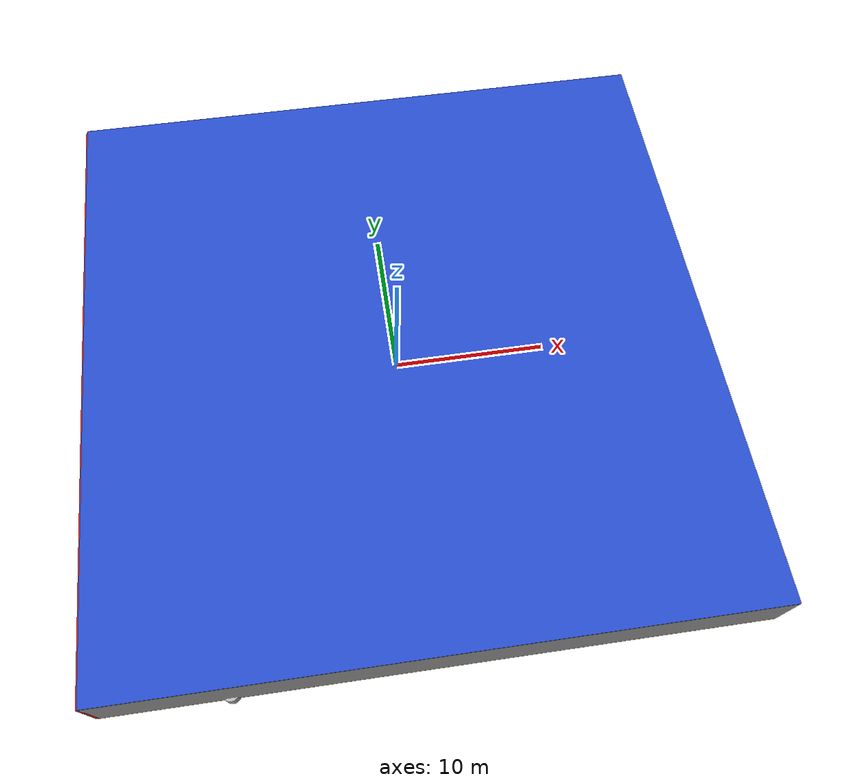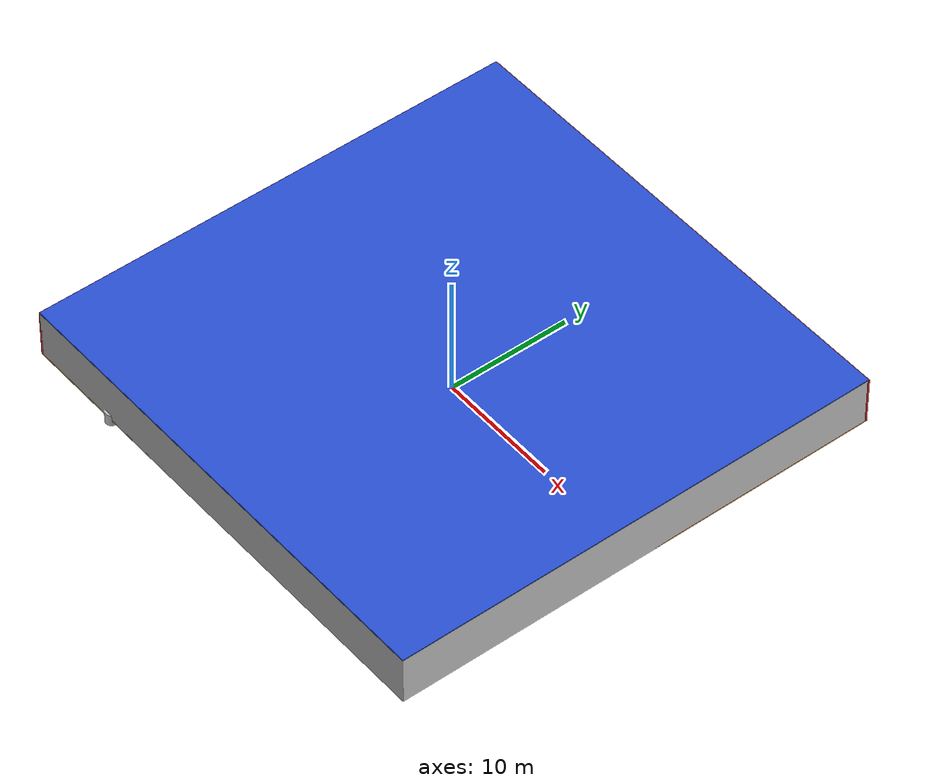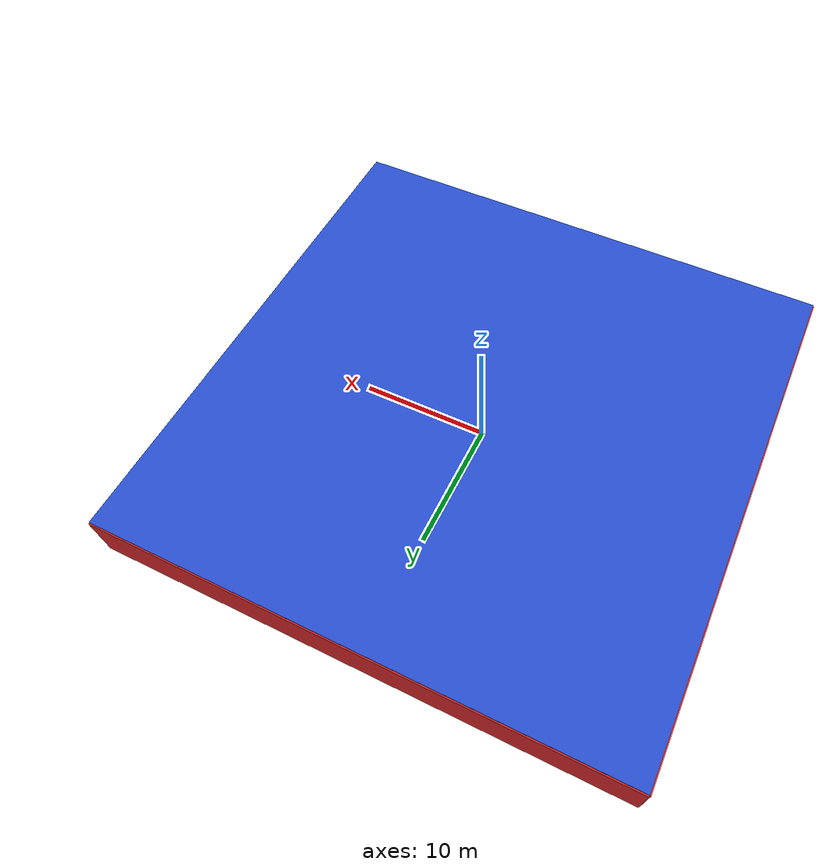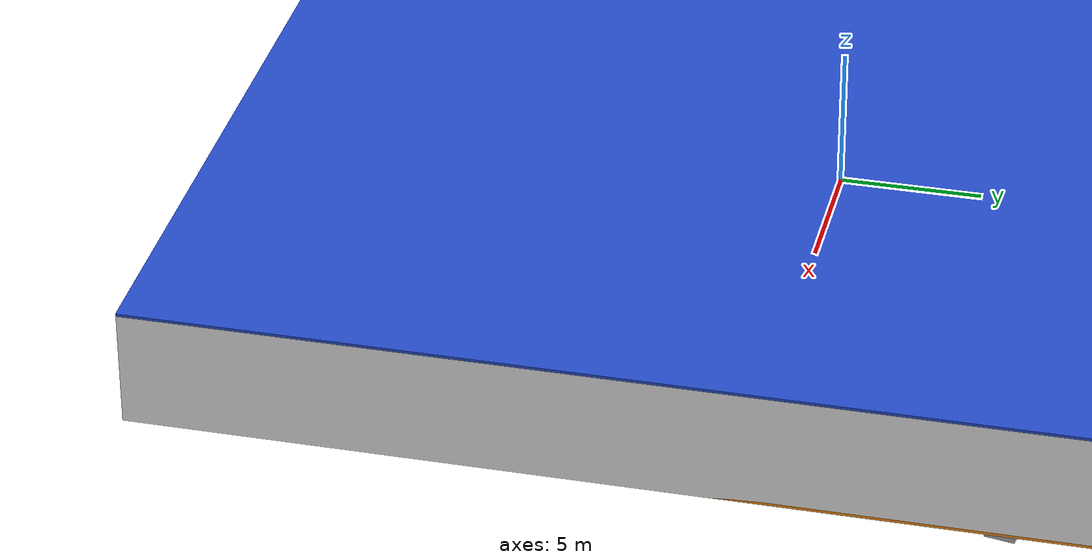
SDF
<sdf version="1.4">
 <world name="default">
  <physics type="ode">
   <max_step_size>0.001</max_step_size>
   <real_time_factor>1</real_time_factor>
   <real_time_update_rate>1000</real_time_update_rate>
   <gravity>0 0 -9.8</gravity>
  </physics>
  <scene><ambient>0.4 0.4 0.4 1</ambient><background>0.7 0.7 0.7 1</background><shadows>1</shadows></scene>
  <model name="Surrounding">
   <static>1</static>
   <link name="Ceiling">
    <collision name="Ceiling_Collision"><geometry><box><size>40 40 0.1</size></box></geometry></collision>
    <visual name="Ceiling_Visual">
     <geometry><box><size>40 40 0.1</size></box></geometry>
     <material>
      <script><uri>file://media/materials/scripts/gazebo.material</uri><name>Gazebo/BlueGlow</name></script>
     </material>
    </visual>
    <pose>0 0 4.05 0 0 0</pose>
   </link>
   <link name="Wall_South">
    <collision name="Wall_South_Collision">
     <geometry><box><size>40 0 4</size></box></geometry>
     <pose>0 0 2 0 -0 0</pose>
    </collision>
    <visual name="Wall_South_Visual">
     <pose>0 0 2 0 -0 0</pose>
     <geometry><box><size>40 0 4</size></box></geometry>
     <material>
      <script><uri>file://media/materials/scripts/gazebo.material</uri><name>Gazebo/Grey</name></script>
     </material>
    </visual>
    <velocity_decay><linear>0</linear><angular>0</angular></velocity_decay>
    <pose>0 -20 0 0 -0 0</pose>
   </link>
   <link name="Wall_East">
    <collision name="Wall_21_Collision">
     <geometry><box><size>40 0 4</size></box></geometry>
     <pose>0 0 2 0 -0 0</pose>
    </collision>
    <visual name="Wall_21_Visual">
     <pose>0 0 2 0 -0 0</pose>
     <geometry><box><size>40 0 4</size></box></geometry>
     <material>
      <script><uri>file://media/materials/scripts/gazebo.material</uri><name>Gazebo/White</name></script>
     </material>
    </visual>
    <velocity_decay><linear>0</linear><angular>0</angular></velocity_decay>
    <pose>20 0 0 0 -0 1.5708</pose>
   </link>
   <link name="Wall_North">
    <collision name="Wall_22_Collision">
     <geometry><box><size>40 0.2 4</size></box></geometry>
     <pose>0 0 2 0 -0 0</pose>
    </collision>
    <visual name="Wall_22_Visual">
     <pose>0 0 2 0 -0 0</pose>
     <geometry><box><size>40 0.2 4</size></box></geometry>
     <material>
      <script><uri>file://media/materials/scripts/gazebo.material</uri><name>Gazebo/RedGlow</name></script>
     </material>
    </visual>
    <velocity_decay><linear>0</linear><angular>0</angular></velocity_decay>
    <pose>0 20 0 0 -0 0</pose>
   </link>
   <link name="Wall_West">
    <collision name="Wall_23_Collision">
     <geometry><box><size>40 0.2 4</size></box></geometry>
     <pose>0 0 2 0 -0 0</pose>
    </collision>
    <visual name="Wall_23_Visual">
     <pose>0 0 2 0 -0 0</pose>
     <geometry><box><size>40 0.2 4</size></box></geometry>
     <material>
      <script><uri>file://media/materials/scripts/gazebo.material</uri><name>Gazebo/Red</name></script>
     </material>
    </visual>
    <velocity_decay><linear>0</linear><angular>0</angular></velocity_decay>
    <pose>-20 0 0 0 0 -1.5708</pose>
   </link>
   <link name="Ground_link">
    <collision name="collision">
     <pose>0 0 .05 0 -0 0</pose>
     <geometry><box><size>40 40 0.1</size></box></geometry>
    </collision>
    <visual name="visual">
     <pose>0 0 .05 0 -0 0</pose>
     <geometry><box><size>40 40 0.1</size></box></geometry>
     <material>
      <script><uri>file://media/materials/scripts/gazebo.material</uri><name>Gazebo/Orange</name></script>
     </material>
    </visual>
   </link>
   <static>1</static>
  </model>
  <spherical_coordinates>
   <surface_model>EARTH_WGS84</surface_model>
   <latitude_deg>0</latitude_deg>
   <longitude_deg>0</longitude_deg>
   <elevation>0</elevation>
   <heading_deg>0</heading_deg>
  </spherical_coordinates>
  <light name="lightball_0" type="diffuse">
   <diffuse>0.8 0.8 0.8 1</diffuse>
   <specular>0.2 0.2 0.2 1</specular>
   <attenuation>
    <range>100</range>
    <constant>0.7</constant>
    <linear>0.01</linear>
    <quadratic>0.001</quadratic>
   </attenuation>
   <direction>-0.5 0.1 -0.9</direction>
   <pose>-8.46878161522 -18.822625193 3.58309246713 0 0 0</pose>
  </light>
  <light name="lightball_1" type="diffuse">
   <diffuse>0.8 0.8 0.8 1</diffuse>
   <specular>0.2 0.2 0.2 1</specular>
   <attenuation>
    <range>100</range>
    <constant>0.7</constant>
    <linear>0.01</linear>
    <quadratic>0.001</quadratic>
   </attenuation>
   <direction>-0.5 0.1 -0.9</direction>
   <pose>-7.41520383944 0.0540294621728 0.947902784791 0 0 0</pose>
  </light>
  <light name="lightball_2" type="diffuse">
   <diffuse>0.8 0.8 0.8 1</diffuse>
   <specular>0.2 0.2 0.2 1</specular>
   <attenuation>
    <range>100</range>
    <constant>0.7</constant>
    <linear>0.01</linear>
    <quadratic>0.001</quadratic>
   </attenuation>
   <direction>-0.5 0.1 -0.9</direction>
   <pose>10.3040403034 -0.342239010584 2.86432506064 0 0 0</pose>
  </light>
  <light name="lightball_3" type="diffuse">
   <diffuse>0.8 0.8 0.8 1</diffuse>
   <specular>0.2 0.2 0.2 1</specular>
   <attenuation>
    <range>100</range>
    <constant>0.7</constant>
    <linear>0.01</linear>
    <quadratic>0.001</quadratic>
   </attenuation>
   <direction>-0.5 0.1 -0.9</direction>
   <pose>-6.33003200798 -17.0636969686 1.57039392374 0 0 0</pose>
  </light>
  <light name="lightball_4" type="diffuse">
   <diffuse>0.8 0.8 0.8 1</diffuse>
   <specular>0.2 0.2 0.2 1</specular>
   <attenuation>
    <range>100</range>
    <constant>0.7</constant>
    <linear>0.01</linear>
    <quadratic>0.001</quadratic>
   </attenuation>
   <direction>-0.5 0.1 -0.9</direction>
   <pose>-13.2780355296 -7.66080798674 3.88198136258 0 0 0</pose>
  </light>
  <light name="lightball_5" type="diffuse">
   <diffuse>0.8 0.8 0.8 1</diffuse>
   <specular>0.2 0.2 0.2 1</specular>
   <attenuation>
    <range>100</range>
    <constant>0.7</constant>
    <linear>0.01</linear>
    <quadratic>0.001</quadratic>
   </attenuation>
   <direction>-0.5 0.1 -0.9</direction>
   <pose>5.31298023061 3.13522265476 1.29009662507 0 0 0</pose>
  </light>
  <light name="lightball_6" type="diffuse">
   <diffuse>0.8 0.8 0.8 1</diffuse>
   <specular>0.2 0.2 0.2 1</specular>
   <attenuation>
    <range>100</range>
    <constant>0.7</constant>
    <linear>0.01</linear>
    <quadratic>0.001</quadratic>
   </attenuation>
   <direction>-0.5 0.1 -0.9</direction>
   <pose>-7.41172964962 -1.49866447869 1.45464153144 0 0 0</pose>
  </light>
  <light name="lightball_7" type="diffuse">
   <diffuse>0.8 0.8 0.8 1</diffuse>
   <specular>0.2 0.2 0.2 1</specular>
   <attenuation>
    <range>100</range>
    <constant>0.7</constant>
    <linear>0.01</linear>
    <quadratic>0.001</quadratic>
   </attenuation>
   <direction>-0.5 0.1 -0.9</direction>
   <pose>-18.9452281707 -16.2332494605 3.02263436317 0 0 0</pose>
  </light>
  <light name="lightball_8" type="diffuse">
   <diffuse>0.8 0.8 0.8 1</diffuse>
   <specular>0.2 0.2 0.2 1</specular>
   <attenuation>
    <range>100</range>
    <constant>0.7</constant>
    <linear>0.01</linear>
    <quadratic>0.001</quadratic>
   </attenuation>
   <direction>-0.5 0.1 -0.9</direction>
   <pose>-10.6258585838 16.5694298189 1.94904183325 0 0 0</pose>
  </light>
  <light name="lightball_9" type="diffuse">
   <diffuse>0.8 0.8 0.8 1</diffuse>
   <specular>0.2 0.2 0.2 1</specular>
   <attenuation>
    <range>100</range>
    <constant>0.7</constant>
    <linear>0.01</linear>
    <quadratic>0.001</quadratic>
   </attenuation>
   <direction>-0.5 0.1 -0.9</direction>
   <pose>-12.3719702221 18.0638909159 1.25057015084 0 0 0</pose>
  </light>
  <light name="lightball_10" type="diffuse">
   <diffuse>0.8 0.8 0.8 1</diffuse>
   <specular>0.2 0.2 0.2 1</specular>
   <attenuation>
    <range>100</range>
    <constant>0.7</constant>
    <linear>0.01</linear>
    <quadratic>0.001</quadratic>
   </attenuation>
   <direction>-0.5 0.1 -0.9</direction>
   <pose>-15.7870420965 -15.1231212573 1.64082867579 0 0 0</pose>
  </light>
  <light name="lightball_11" type="diffuse">
   <diffuse>0.8 0.8 0.8 1</diffuse>
   <specular>0.2 0.2 0.2 1</specular>
   <attenuation>
    <range>100</range>
    <constant>0.7</constant>
    <linear>0.01</linear>
    <quadratic>0.001</quadratic>
   </attenuation>
   <direction>-0.5 0.1 -0.9</direction>
   <pose>5.49340433396 15.4641139359 1.23337713244 0 0 0</pose>
  </light>
  <include><uri>model://table</uri><pose>-18.150948924 -10.7373507973 0 0 0 2.61711961236</pose></include>
  <include><uri>model://cabinet</uri><pose>-14.1636431434 -10.8768369124 0 0 0 1.22925899789</pose></include>
  <include>
   <uri>model://textured_shapes</uri>
   <pose>-13.4069001908 -7.57036999363 0 0 0 2.10191504115</pose>
  </include>
  <include><uri>model://cabinet</uri><pose>-13.9584201786 6.30188710051 0 0 0 2.94017130315</pose></include>
  <include>
   <uri>model://textured_shapes</uri>
   <pose>-11.8411294018 -18.3076491043 0 0 0 2.77237799779</pose>
  </include>
  <include><uri>model://table</uri><pose>-10.8526558077 -6.59250404254 0 0 0 1.14215108408</pose></include>
  <include>
   <uri>model://construction_cone</uri>
   <pose>-10.5197582604 6.02917978517 0 0 0 0.588818378041</pose>
  </include>
  <include><uri>model://cabinet</uri><pose>-10.7910952394 10.1576410585 0 0 0 1.65078282825</pose></include>
  <include><uri>model://cabinet</uri><pose>-10.9171940818 19.1417398297 0 0 0 2.20184323574</pose></include>
  <include><uri>model://table</uri><pose>-8.53636949207 5.35278953804 0 0 0 1.7234399511</pose></include>
  <include>
   <uri>model://robocup_3Dsim_goal</uri>
   <pose>-8.02858198557 8.31216575611 0 0 0 1.41862599705</pose>
  </include>
  <include>
   <uri>model://construction_cone</uri>
   <pose>-6.58759718239 -12.2642182053 0 0 0 2.46326806255</pose>
  </include>
  <include><uri>model://cabinet</uri><pose>-1.57584279169 -6.07313695896 0 0 0 3.11676827762</pose></include>
  <include>
   <uri>model://textured_shapes</uri>
   <pose>1.33853142947 3.60764600056 0 0 0 0.399703707819</pose>
  </include>
  <include>
   <uri>model://textured_shapes</uri>
   <pose>4.5752212129 11.7365867023 0 0 0 0.818932562538</pose>
  </include>
  <include><uri>model://cabinet</uri><pose>5.41988321721 -8.92717015093 0 0 0 1.04344715831</pose></include>
  <include>
   <uri>model://robocup_3Dsim_goal</uri>
   <pose>13.1861908574 -12.4764029191 0 0 0 2.02835463003</pose>
  </include>
  <include><uri>model://cabinet</uri><pose>13.6056930422 -2.24762279903 0 0 0 0.727920104392</pose></include>
  <include>
   <uri>model://robocup_3Dsim_goal</uri>
   <pose>12.6226643726 1.58769738991 0 0 0 1.43566317794</pose>
  </include>
  <include><uri>model://cabinet</uri><pose>11.7145928593 3.35777553266 0 0 0 1.62013610594</pose></include>
  <include>
   <uri>model://robocup_3Dsim_goal</uri>
   <pose>15.1033549466 -18.1118474832 0 0 0 1.89553165574</pose>
  </include>
  <include><uri>model://table</uri><pose>16.2096276684 3.72705190269 0 0 0 0.419537917304</pose></include>
  <include>
   <uri>model://construction_cone</uri>
   <pose>15.0971929041 18.4895699872 0 0 0 2.51378993244</pose>
  </include>
  <include>
   <uri>model://construction_cone</uri>
   <pose>17.7142174843 -7.54091286395 0 0 0 0.302024386606</pose>
  </include>
  <include>
   <uri>model://textured_shapes</uri>
   <pose>18.7361764625 7.12131934233 0 0 0 2.96496137312</pose>
  </include>
 </world>
</sdf>

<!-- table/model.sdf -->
<sdf version="1.5">
  <model name="table">
    <static>true</static>
    <link name="link">
      <collision name="surface">
        <pose>0 0 1.0 0 0 0</pose>
        <geometry>
          <box>
            <size>1.5 0.8 0.03</size>
          </box>
        </geometry>
        <surface>
          <friction>
            <ode>
              <mu>0.6</mu>
              <mu2>0.6</mu2>
            </ode>
          </friction>
        </surface>
      </collision>
      <visual name="visual1">
        <pose>0 0 1.0 0 0 0</pose>
        <geometry>
          <box>
            <size>1.5 0.8 0.03</size>
          </box>
        </geometry>
        <material>
          <script>
            <uri>model://media/materials/scripts/gazebo.material</uri>
            <name>Gazebo/Wood</name>
          </script>
        </material>
      </visual>
      <collision name="front_left_leg">
        <pose>0.68 0.38 0.5 0 0 0</pose>
        <geometry>
          <cylinder>
            <radius>0.02</radius>
            <length>1.0</length>
          </cylinder>
        </geometry>
      </collision>
      <visual name="front_left_leg">
        <pose>0.68 0.38 0.5 0 0 0</pose>
        <geometry>
          <cylinder>
            <radius>0.02</radius>
            <length>1.0</length>
          </cylinder>
        </geometry>
        <material>
          <script>
            <uri>model://media/materials/scripts/gazebo.material</uri>
            <name>Gazebo/Grey</name>
          </script>
        </material>
      </visual>
      <collision name="front_right_leg">
        <pose>0.68 -0.38 0.5 0 0 0</pose>
        <geometry>
          <cylinder>
            <radius>0.02</radius>
            <length>1.0</length>
          </cylinder>
        </geometry>
      </collision>
      <visual name="front_right_leg">
        <pose>0.68 -0.38 0.5 0 0 0</pose>
        <geometry>
          <cylinder>
            <radius>0.02</radius>
            <length>1.0</length>
          </cylinder>
        </geometry>
        <material>
          <script>
            <uri>model://media/materials/scripts/gazebo.material</uri>
            <name>Gazebo/Grey</name>
          </script>
        </material>
      </visual>
      <collision name="back_right_leg">
        <pose>-0.68 -0.38 0.5 0 0 0</pose>
        <geometry>
          <cylinder>
            <radius>0.02</radius>
            <length>1.0</length>
          </cylinder>
        </geometry>
      </collision>
      <visual name="back_right_leg">
        <pose>-0.68 -0.38 0.5 0 0 0</pose>
        <geometry>
          <cylinder>
            <radius>0.02</radius>
            <length>1.0</length>
          </cylinder>
        </geometry>
        <material>
          <script>
            <uri>model://media/materials/scripts/gazebo.material</uri>
            <name>Gazebo/Grey</name>
          </script>
        </material>
      </visual>
      <collision name="back_left_leg">
        <pose>-0.68 0.38 0.5 0 0 0</pose>
        <geometry>
          <cylinder>
            <radius>0.02</radius>
            <length>1.0</length>
          </cylinder>
        </geometry>
      </collision>
      <visual name="back_left_leg">
        <pose>-0.68 0.38 0.5 0 0 0</pose>
        <geometry>
          <cylinder>
            <radius>0.02</radius>
            <length>1.0</length>
          </cylinder>
        </geometry>
        <material>
          <script>
            <uri>model://media/materials/scripts/gazebo.material</uri>
            <name>Gazebo/Grey</name>
          </script>
        </material>
      </visual>
    </link>
  </model>
</sdf>

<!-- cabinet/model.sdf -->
<sdf version="1.5">
  <model name="cabinet">
    <static>true</static>
    <link name="cabinet_bottom_plate">
      <inertial>
        <pose>0 0 -1 0 0 0</pose>
        <inertia>
          <ixx>2.050000</ixx>
          <ixy>0</ixy>
          <ixz>0</ixz>
          <iyy>2.050000</iyy>
          <iyz>0</iyz>
          <izz>2.050000</izz>
        </inertia>
        <mass>25.000000</mass>
      </inertial>
      <collision name="cabinet_bottom_plate_geom">
        <pose>0 0 0.010000 0 0 0</pose>
        <geometry>
          <box>
            <size>0.450000 0.450000 0.020000</size>
          </box>
        </geometry>
      </collision>
      <visual name="cabinet_bottom_plate_geom_visual">
        <pose>0 0 0.010000 0 0 0</pose>
        <geometry>
          <box>
            <size>0.450000 0.450000 0.020000</size>
          </box>
        </geometry>
        <material>
          <script>
            <uri>model://media/materials/scripts/gazebo.material</uri>
            <name>Gazebo/Wood</name>
          </script>
        </material>
      </visual>
      <collision name="cabinet_bottom_plate_geom_cabinet_back_plate">
        <pose>0.235000 0 0.510000 0 0 0</pose>
        <geometry>
          <box>
            <size>0.020000 0.450000 1.020000</size>
          </box>
        </geometry>
      </collision>
      <visual name="cabinet_bottom_plate_geom_cabinet_back_plate_visual">
        <pose>0.235000 0 0.510000 0 0 0</pose>
        <geometry>
          <box>
            <size>0.020000 0.450000 1.020000</size>
          </box>
        </geometry>
        <material>
          <script>
            <uri>model://media/materials/scripts/gazebo.material</uri>
            <name>Gazebo/Wood</name>
          </script>
        </material>
      </visual>
      <collision name="cabinet_bottom_plate_geom_cabinet_left_plate">
        <pose>0 0.235000 0.510000 0 0 0</pose>
        <geometry>
          <box>
            <size>0.450000 0.020000 1.020000</size>
          </box>
        </geometry>
      </collision>
      <visual name="cabinet_bottom_plate_geom_cabinet_left_plate_visual">
        <pose>0 0.235000 0.510000 0 0 0</pose>
        <geometry>
          <box>
            <size>0.450000 0.020000 1.020000</size>
          </box>
        </geometry>
        <material>
          <script>
            <uri>model://media/materials/scripts/gazebo.material</uri>
            <name>Gazebo/Wood</name>
          </script>
        </material>
      </visual>
      <collision name="cabinet_bottom_plate_geom_cabinet_middle_plate">
        <pose>0 0 0.510000 0 0 0</pose>
        <geometry>
          <box>
            <size>0.450000 0.450000 0.020000</size>
          </box>
        </geometry>
      </collision>
      <visual name="cabinet_bottom_plate_geom_cabinet_middle_plate_visual">
        <pose>0 0 0.510000 0 0 0</pose>
        <geometry>
          <box>
            <size>0.450000 0.450000 0.020000</size>
          </box>
        </geometry>
        <material>
          <script>
            <uri>model://media/materials/scripts/gazebo.material</uri>
            <name>Gazebo/Wood</name>
          </script>
        </material>
      </visual>
      <collision name="cabinet_bottom_plate_geom_cabinet_right_plate">
        <pose>0 -0.235000 0.510000 0 0 0</pose>
        <geometry>
          <box>
            <size>0.450000 0.020000 1.020000</size>
          </box>
        </geometry>
      </collision>
      <visual name="cabinet_bottom_plate_geom_cabinet_right_plate_visual">
        <pose>0 -0.235000 0.510000 0 0 0</pose>
        <geometry>
          <box>
            <size>0.450000 0.020000 1.020000</size>
          </box>
        </geometry>
        <material>
          <script>
            <uri>model://media/materials/scripts/gazebo.material</uri>
            <name>Gazebo/Wood</name>
          </script>
        </material>
      </visual>
      <collision name="cabinet_bottom_plate_geom_cabinet_top_plate">
        <pose>0 0 1.010000 0 0 0</pose>
        <geometry>
          <box>
            <size>0.450000 0.450000 0.020000</size>
          </box>
        </geometry>
      </collision>
      <visual name="cabinet_bottom_plate_geom_cabinet_top_plate_visual">
        <pose>0 0 1.010000 0 0 0</pose>
        <geometry>
          <box>
            <size>0.450000 0.450000 0.020000</size>
          </box>
        </geometry>
        <material>
          <script>
            <uri>model://media/materials/scripts/gazebo.material</uri>
            <name>Gazebo/Wood</name>
          </script>
        </material>
      </visual>
    </link>
  </model>
</sdf>

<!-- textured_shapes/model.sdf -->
<sdf version="1.6">
  <model name="textured_shapes">
    <pose>0 0 0.5 0 0 0</pose>
    <link name="box">
      <pose>0 -1.5 0 0 0 0</pose>
      <collision name="collision">
        <geometry>
          <box>
            <size>1 1 1</size>
          </box>
        </geometry>
      </collision>
      <visual name="visual">
        <geometry>
          <box>
            <size>1 1 1</size>
          </box>
        </geometry>
        <material>
          <script>
            <uri>model://../model_source/models/textured_shapes/materials/scripts</uri>
            <uri>model://../model_source/models/textured_shapes/materials/textures</uri>
            <name>TexturedShape/Squares</name>
          </script>
        </material>
      </visual>
    </link>
    <link name="sphere">
      <collision name="collision">
        <geometry>
          <sphere>
            <radius>0.5</radius>
          </sphere>
        </geometry>
      </collision>
      <visual name="visual">
        <geometry>
          <sphere>
            <radius>0.5</radius>
          </sphere>
        </geometry>
        <material>
          <script>
            <uri>model://../model_source/models/textured_shapes/materials/scripts</uri>
            <uri>model://../model_source/models/textured_shapes/materials/textures</uri>
            <name>TexturedShape/Squares</name>
          </script>
        </material>
      </visual>
    </link>
    <link name="cylinder">
      <pose>0 1.5 0 0 0 0</pose>
      <collision name="collision">
        <geometry>
          <cylinder>
            <radius>0.5</radius>
            <length>1</length>
          </cylinder>
        </geometry>
      </collision>
      <visual name="visual">
        <geometry>
          <cylinder>
            <radius>0.5</radius>
            <length>1</length>
          </cylinder>
        </geometry>
        <material>
          <script>
            <uri>model://../model_source/models/textured_shapes/materials/scripts</uri>
            <uri>model://../model_source/models/textured_shapes/materials/textures</uri>
            <name>TexturedShape/Squares</name>
          </script>
        </material>
      </visual>
    </link>
  </model>
</sdf>

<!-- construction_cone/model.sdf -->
<sdf version="1.5">
  <model name="Construction Cone">
    <link name="link">
      <collision name="collision">
        <geometry>
          <mesh>
            <scale>10 10 10</scale>
            <uri>file://isr-testbed/construction_cone/meshes/construction_cone.dae</uri>
          </mesh>
        </geometry>
      </collision>
      <visual name="visual">
        <geometry>
          <mesh>
            <scale>10 10 10</scale>
            <uri>file://isr-testbed/construction_cone/meshes/construction_cone.dae</uri>
          </mesh>
        </geometry>
      </visual>
    </link>
  </model>
</sdf>

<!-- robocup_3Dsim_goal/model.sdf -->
<sdf version="1.5">
  <model name="robocup_3d_goal">
    <static>true</static>
    <link name="left_post">
      <pose>0 1.05 0.45 0 0 0</pose>
      <collision name="collision">
        <geometry>
          <cylinder>
            <radius>0.05</radius>
            <length>0.9</length>
          </cylinder>
        </geometry>
      </collision>
      <visual name="visual">
        <geometry>
          <cylinder>
            <radius>0.05</radius>
            <length>0.9</length>
          </cylinder>
        </geometry>
        <material>
          <script>
            <uri>file://media/materials/scripts/gazebo.material</uri>
            <name>Gazebo/ZincYellow</name>
          </script>
        </material>
      </visual>
    </link>
    <link name="left_support_horiz_lower">
      <pose>0.30 1.05 0.01 0 0 0</pose>
      <collision name="collision">
        <geometry>
          <box>
            <size>0.50 0.02 0.02</size>
          </box>
        </geometry>
      </collision>
      <visual name="visual">
        <geometry>
          <box>
            <size>0.50 0.02 0.02</size>
          </box>
        </geometry>
        <material>
          <script>
            <uri>file://media/materials/scripts/gazebo.material</uri>
            <name>Gazebo/White</name>
          </script>
        </material>
      </visual>
    </link>
    <link name="left_support_horiz_upper">
      <pose>0.30 1.05 0.79 0 0 0</pose>
      <collision name="collision">
        <geometry>
          <box>
            <size>0.50 0.02 0.02</size>
          </box>
        </geometry>
      </collision>
      <visual name="visual">
        <geometry>
          <box>
            <size>0.50 0.02 0.02</size>
          </box>
        </geometry>
        <material>
          <script>
            <uri>file://media/materials/scripts/gazebo.material</uri>
            <name>Gazebo/White</name>
          </script>
        </material>
      </visual>
    </link>
    <link name="left_support_vertical">
      <pose>0.56 1.05 0.4 0 1.5708 0</pose>
      <collision name="collision">
        <geometry>
          <box>
            <size>0.80 0.02 0.02</size>
          </box>
        </geometry>
      </collision>
      <visual name="visual">
        <geometry>
          <box>
            <size>0.80 0.02 0.02</size>
          </box>
        </geometry>
        <material>
          <script>
            <uri>file://media/materials/scripts/gazebo.material</uri>
            <name>Gazebo/White</name>
          </script>
        </material>
      </visual>
    </link>
    <link name="right_support_horiz_lower">
      <pose>0.30 -1.05 0.01 0 0 0</pose>
      <collision name="collision">
        <geometry>
          <box>
            <size>0.50 0.02 0.02</size>
          </box>
        </geometry>
      </collision>
      <visual name="visual">
        <geometry>
          <box>
            <size>0.50 0.02 0.02</size>
          </box>
        </geometry>
        <material>
          <script>
            <uri>file://media/materials/scripts/gazebo.material</uri>
            <name>Gazebo/White</name>
          </script>
        </material>
      </visual>
    </link>
    <link name="right_support_horiz_upper">
      <pose>0.30 -1.05 0.79 0 0 0</pose>
      <collision name="collision">
        <geometry>
          <box>
            <size>0.50 0.02 0.02</size>
          </box>
        </geometry>
      </collision>
      <visual name="visual">
        <geometry>
          <box>
            <size>0.50 0.02 0.02</size>
          </box>
        </geometry>
        <material>
          <script>
            <uri>file://media/materials/scripts/gazebo.material</uri>
            <name>Gazebo/White</name>
          </script>
        </material>
      </visual>
    </link>
    <link name="right_support_vertical">
      <pose>0.56 -1.05 0.4 0 1.5708 0</pose>
      <collision name="collision">
        <geometry>
          <box>
            <size>0.80 0.02 0.02</size>
          </box>
        </geometry>
      </collision>
      <visual name="visual">
        <geometry>
          <box>
            <size>0.80 0.02 0.02</size>
          </box>
        </geometry>
        <material>
          <script>
            <uri>file://media/materials/scripts/gazebo.material</uri>
            <name>Gazebo/White</name>
          </script>
        </material>
      </visual>
    </link>
    <link name="center_support_horiz_lower">
      <pose>0.56 0 0.01 0 1.5708 0</pose>
      <collision name="collision">
        <geometry>
          <box>
            <size>0.02 2.08 0.02</size>
          </box>
        </geometry>
      </collision>
      <visual name="visual">
        <geometry>
          <box>
            <size>0.02 2.08 0.02</size>
          </box>
        </geometry>
        <material>
          <script>
            <uri>file://media/materials/scripts/gazebo.material</uri>
            <name>Gazebo/White</name>
          </script>
        </material>
      </visual>
    </link>
    <link name="center_support_horiz_upper">
      <pose>0.56 0 0.79 0 1.5708 0</pose>
      <collision name="collision">
        <geometry>
          <box>
            <size>0.02 2.08 0.02</size>
          </box>
        </geometry>
      </collision>
      <visual name="visual">
        <geometry>
          <box>
            <size>0.02 2.08 0.02</size>
          </box>
        </geometry>
        <material>
          <script>
            <uri>file://media/materials/scripts/gazebo.material</uri>
            <name>Gazebo/White</name>
          </script>
        </material>
      </visual>
    </link>
    <link name="right_post">
      <pose>0 -1.05 0.45 0 0 0</pose>
      <collision name="collision">
        <geometry>
          <cylinder>
            <radius>0.05</radius>
            <length>0.9</length>
          </cylinder>
        </geometry>
      </collision>
      <visual name="visual">
        <geometry>
          <cylinder>
            <radius>0.05</radius>
            <length>0.9</length>
          </cylinder>
        </geometry>
        <material>
          <script>
            <uri>file://media/materials/scripts/gazebo.material</uri>
            <name>Gazebo/ZincYellow</name>
          </script>
        </material>
      </visual>
    </link>
    <link name="crossbar">
      <pose>0 0 0.85 1.57 1.57 0</pose>
      <collision name="collision">
        <geometry>
          <cylinder>
            <radius>0.05</radius>
            <length>2.0</length>
          </cylinder>
        </geometry>
      </collision>
      <visual name="visual">
        <geometry>
          <cylinder>
            <radius>0.05</radius>
            <length>2.0</length>
          </cylinder>
        </geometry>
        <material>
          <script>
            <uri>file://media/materials/scripts/gazebo.material</uri>
            <name>Gazebo/ZincYellow</name>
          </script>
        </material>
      </visual>
    </link>
    <link name="center_net">
      <pose>0.56 0 0.40 0 0 0</pose>
      <collision name="collision">
        <geometry>
          <box>
            <size>0.01 2.1 0.80</size>
          </box>
        </geometry>
      </collision>
      <visual name="visual">
        <geometry>
          <box>
            <size>0.01 2.1 0.80</size>
          </box>
        </geometry>
        <material>
          <script>
            <uri>model://../model_source/models/robocup09_spl_field/materials/scripts/</uri>
            <uri>model://../model_source/models/robocup09_spl_field/materials/textures/</uri>
            <name>RoboCup/Net</name>
          </script>
        </material>
      </visual>
    </link>
    <link name="left_net">
      <pose>0.30 1.05 0.40 0 0 0</pose>
      <collision name="collision">
        <geometry>
          <box>
            <size>0.50 0.01 0.76</size>
          </box>
        </geometry>
      </collision>
      <visual name="visual">
        <geometry>
          <box>
            <size>0.50 0.01 0.76</size>
          </box>
        </geometry>
        <material>
          <script>
            <uri>model://../model_source/models/robocup09_spl_field/materials/scripts/</uri>
            <uri>model://../model_source/models/robocup09_spl_field/materials/textures/</uri>
            <name>RoboCup/Net</name>
          </script>
        </material>
      </visual>
    </link>
    <link name="right_net">
      <pose>0.30 -1.05 0.40 0 0 0</pose>
      <collision name="collision">
        <geometry>
          <box>
            <size>0.50 0.01 0.76</size>
          </box>
        </geometry>
      </collision>
      <visual name="visual">
        <geometry>
          <box>
            <size>0.50 0.01 0.76</size>
          </box>
        </geometry>
        <material>
          <script>
            <uri>model://../model_source/models/robocup09_spl_field/materials/scripts/</uri>
            <uri>model://../model_source/models/robocup09_spl_field/materials/textures/</uri>
            <name>RoboCup/Net</name>
          </script>
        </material>
      </visual>
    </link>
  </model>
</sdf>
